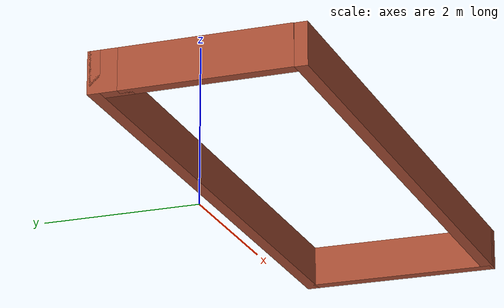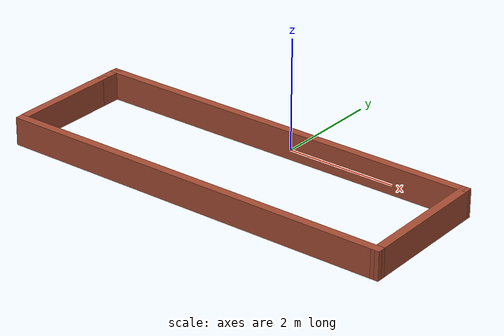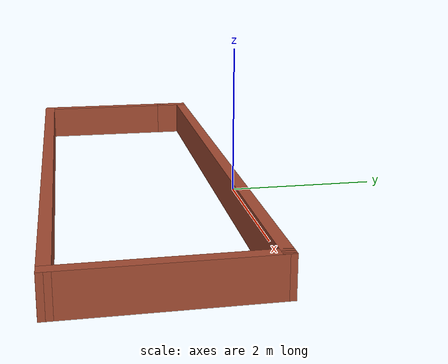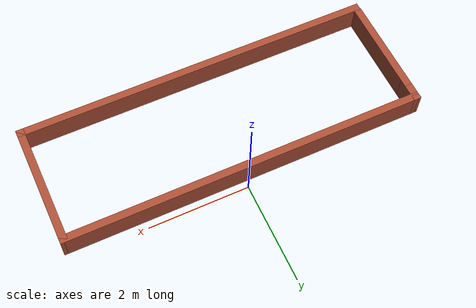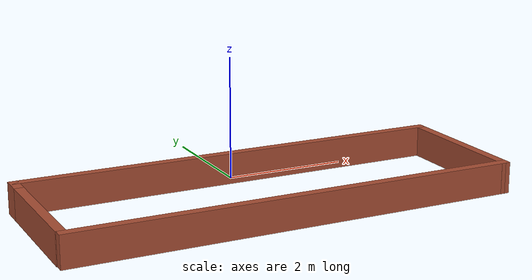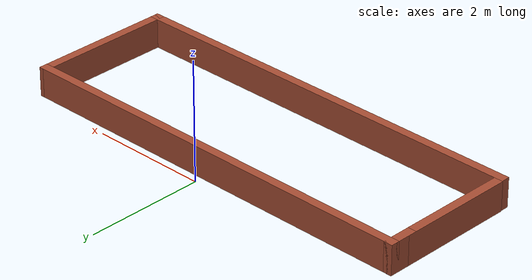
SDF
<?xml version='1.0'?>
<sdf version='1.6'>
  <model name='shortfloor'>
    <pose frame=''>-0.064841 -1.385 0 0 -0 0</pose>
    <link name='Wall_10'>
      <collision name='Wall_10_Collision'>
        <geometry>
          <box>
            <size>0.5 0.15 0.5</size>
          </box>
        </geometry>
        <pose frame=''>0 0 0.25 0 -0 0</pose>
      </collision>
      <visual name='Wall_10_Visual'>
        <pose frame=''>0 0 0.25 0 -0 0</pose>
        <geometry>
          <box>
            <size>0.5 0.15 0.5</size>
          </box>
        </geometry>
        <material>
          <script>
            <uri>file://media/materials/scripts/gazebo.material</uri>
            <name>Gazebo/Bricks</name>
          </script>
          <ambient>1 1 1 1</ambient>
        </material>
        <meta>
          <layer>0</layer>
        </meta>
      </visual>
      <pose frame=''>-3.55516 1 0 0 -0 1.5708</pose>
    </link>
    <link name='Wall_11'>
      <collision name='Wall_11_Collision'>
        <geometry>
          <box>
            <size>7.25 0.15 0.5</size>
          </box>
        </geometry>
        <pose frame=''>0 0 0.25 0 -0 0</pose>
      </collision>
      <visual name='Wall_11_Visual'>
        <pose frame=''>0 0 0.25 0 -0 0</pose>
        <geometry>
          <box>
            <size>7.25 0.15 0.5</size>
          </box>
        </geometry>
        <material>
          <script>
            <uri>file://media/materials/scripts/gazebo.material</uri>
            <name>Gazebo/Bricks</name>
          </script>
          <ambient>1 1 1 1</ambient>
        </material>
        <meta>
          <layer>0</layer>
        </meta>
      </visual>
      <pose frame=''>-0.005159 1.175 0 0 -0 0</pose>
    </link>
    <link name='Wall_13'>
      <collision name='Wall_13_Collision'>
        <geometry>
          <box>
            <size>2.5 0.15 0.5</size>
          </box>
        </geometry>
        <pose frame=''>0 0 0.25 0 -0 0</pose>
      </collision>
      <visual name='Wall_13_Visual'>
        <pose frame=''>0 0 0.25 0 -0 0</pose>
        <geometry>
          <box>
            <size>2.5 0.15 0.5</size>
          </box>
        </geometry>
        <material>
          <script>
            <uri>file://media/materials/scripts/gazebo.material</uri>
            <name>Gazebo/Bricks</name>
          </script>
          <ambient>1 1 1 1</ambient>
        </material>
        <meta>
          <layer>0</layer>
        </meta>
      </visual>
      <pose frame=''>3.54984 0 0 0 0 -1.56654</pose>
    </link>
    <link name='Wall_14'>
      <collision name='Wall_14_Collision'>
        <geometry>
          <box>
            <size>7.25 0.15 0.5</size>
          </box>
        </geometry>
        <pose frame=''>0 0 0.25 0 -0 0</pose>
      </collision>
      <visual name='Wall_14_Visual'>
        <pose frame=''>0 0 0.25 0 -0 0</pose>
        <geometry>
          <box>
            <size>7.25 0.15 0.5</size>
          </box>
        </geometry>
        <material>
          <script>
            <uri>file://media/materials/scripts/gazebo.material</uri>
            <name>Gazebo/Bricks</name>
          </script>
          <ambient>1 1 1 1</ambient>
        </material>
        <meta>
          <layer>0</layer>
        </meta>
      </visual>
      <pose frame=''>0.004841 -1.175 0 0 -0 3.14159</pose>
    </link>
    <link name='Wall_9'>
      <collision name='Wall_9_Collision'>
        <geometry>
          <box>
            <size>2 0.15 0.5</size>
          </box>
        </geometry>
        <pose frame=''>0 0 0.25 0 -0 0</pose>
      </collision>
      <visual name='Wall_9_Visual'>
        <pose frame=''>0 0 0.25 0 -0 0</pose>
        <geometry>
          <box>
            <size>2 0.15 0.5</size>
          </box>
        </geometry>
        <material>
          <script>
            <uri>file://media/materials/scripts/gazebo.material</uri>
            <name>Gazebo/Bricks</name>
          </script>
          <ambient>1 1 1 1</ambient>
        </material>
        <meta>
          <layer>0</layer>
        </meta>
      </visual>
      <pose frame=''>-3.55516 -0.1 0 0 -0 1.5708</pose>
    </link>
    <static>1</static>
  </model>
</sdf>
